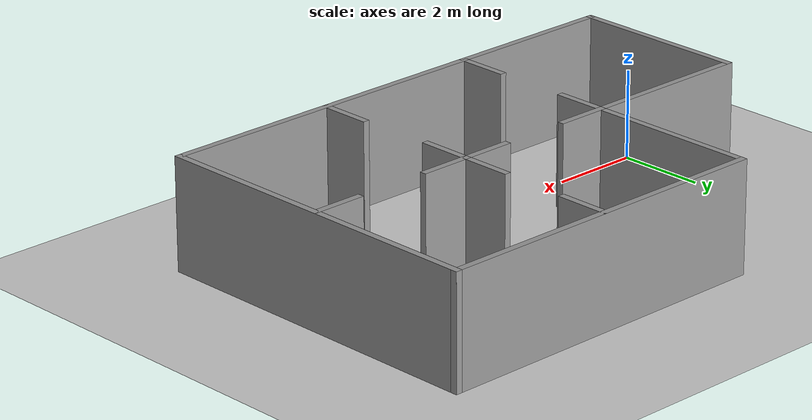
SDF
<sdf version="1.6">
 <world name="default">
  <light name="sun" type="directional">
   <pose>0 0 10 0 -0 0</pose>
   <diffuse>0.8 0.8 0.8 1</diffuse>
   <specular>0.2 0.2 0.2 1</specular>
   <attenuation>
    <range>1000</range>
    <constant>0.9</constant>
    <linear>0.01</linear>
    <quadratic>0.001</quadratic>
   </attenuation>
   <direction>-0.5 0.1 -0.9</direction>
  </light>
  <model name="ground_plane">
   <static>1</static>
   <link name="link">
    <collision name="collision">
     <geometry><plane><normal>0 0 1</normal><size>100 100</size></plane></geometry>
     <surface>
      <contact><collide_bitmask>65535</collide_bitmask></contact>
      <friction><ode><mu>100</mu><mu2>50</mu2></ode></friction>
     </surface>
    </collision>
    <visual name="visual">
     <cast_shadows>0</cast_shadows>
     <geometry><plane><normal>0 0 1</normal><size>100 100</size></plane></geometry>
     <material>
      <script><uri>file://media/materials/scripts/gazebo.material</uri><name>Gazebo/Grey</name></script>
     </material>
    </visual>
   </link>
  </model>
  <gravity>0 0 -9.8</gravity>
  <magnetic_field>6e-06 2.3e-05 -4.2e-05</magnetic_field>
  <atmosphere type="adiabatic"/>
  <physics name="default_physics" default="0" type="ode">
   <max_step_size>0.001</max_step_size>
   <real_time_factor>1</real_time_factor>
   <real_time_update_rate>700</real_time_update_rate>
  </physics>
  <scene><ambient>0.4 0.4 0.4 1</ambient><background>0.7 0.7 0.7 1</background><shadows>1</shadows></scene>
  <audio><device>default</device></audio>
  <spherical_coordinates>
   <surface_model>EARTH_WGS84</surface_model>
   <latitude_deg>0</latitude_deg>
   <longitude_deg>0</longitude_deg>
   <elevation>0</elevation>
   <heading_deg>0</heading_deg>
  </spherical_coordinates>
  <model name="close_loop_home">
   <pose>4.96912 1.9492 0 0 -0 0</pose>
   <link name="Wall_0">
    <collision name="Wall_0_Collision">
     <geometry><box><size>4 0.15 2.5</size></box></geometry>
     <pose>0 0 1.25 0 -0 0</pose>
    </collision>
    <visual name="Wall_0_Visual">
     <pose>0 0 1.25 0 -0 0</pose>
     <geometry><box><size>4 0.15 2.5</size></box></geometry>
     <material>
      <script><uri>file://media/materials/scripts/gazebo.material</uri><name>Gazebo/Grey</name></script>
      <ambient>1 1 1 1</ambient>
     </material>
     <meta><layer>0</layer></meta>
    </visual>
    <pose>-3.925 -3.925 0 0 -0 0</pose>
   </link>
   <link name="Wall_1">
    <collision name="Wall_1_Collision">
     <geometry><box><size>8 0.15 2.5</size></box></geometry>
     <pose>0 0 1.25 0 -0 0</pose>
    </collision>
    <visual name="Wall_1_Visual">
     <pose>0 0 1.25 0 -0 0</pose>
     <geometry><box><size>8 0.15 2.5</size></box></geometry>
     <material>
      <script><uri>file://media/materials/scripts/gazebo.material</uri><name>Gazebo/Grey</name></script>
      <ambient>1 1 1 1</ambient>
     </material>
     <meta><layer>0</layer></meta>
    </visual>
    <pose>1.925 -3.925 0 0 -0 0</pose>
   </link>
   <link name="Wall_10">
    <collision name="Wall_10_Collision">
     <geometry><box><size>1.25 0.15 2.5</size></box></geometry>
     <pose>0 0 1.25 0 -0 0</pose>
    </collision>
    <visual name="Wall_10_Visual">
     <pose>0 0 1.25 0 -0 0</pose>
     <geometry><box><size>1.25 0.15 2.5</size></box></geometry>
     <material>
      <script><uri>file://media/materials/scripts/gazebo.material</uri><name>Gazebo/Grey</name></script>
      <ambient>1 1 1 1</ambient>
     </material>
     <meta><layer>0</layer></meta>
    </visual>
    <pose>-2 -0.475 0 0 -0 -1.5708</pose>
   </link>
   <link name="Wall_12">
    <collision name="Wall_12_Collision">
     <geometry><box><size>1.25 0.15 2.5</size></box></geometry>
     <pose>0 0 1.25 0 -0 0</pose>
    </collision>
    <visual name="Wall_12_Visual">
     <pose>0 0 1.25 0 -0 0</pose>
     <geometry><box><size>1.25 0.15 2.5</size></box></geometry>
     <material>
      <script><uri>file://media/materials/scripts/gazebo.material</uri><name>Gazebo/Grey</name></script>
      <ambient>1 1 1 1</ambient>
     </material>
     <meta><layer>0</layer></meta>
    </visual>
    <pose>-2 -3.375 0 0 -0 1.5708</pose>
   </link>
   <link name="Wall_14">
    <collision name="Wall_14_Collision">
     <geometry><box><size>1.25 0.15 2.5</size></box></geometry>
     <pose>0 0 1.25 0 -0 0</pose>
    </collision>
    <visual name="Wall_14_Visual">
     <pose>0 0 1.25 0 -0 0</pose>
     <geometry><box><size>1.25 0.15 2.5</size></box></geometry>
     <material>
      <script><uri>file://media/materials/scripts/gazebo.material</uri><name>Gazebo/Grey</name></script>
      <ambient>1 1 1 1</ambient>
     </material>
     <meta><layer>0</layer></meta>
    </visual>
    <pose>1.89808 3.37428 0 0 -0 -1.5708</pose>
   </link>
   <link name="Wall_18">
    <collision name="Wall_18_Collision">
     <geometry><box><size>1.25 0.15 2.5</size></box></geometry>
     <pose>0 0 1.25 0 -0 0</pose>
    </collision>
    <visual name="Wall_18_Visual">
     <pose>0 0 1.25 0 -0 0</pose>
     <geometry><box><size>1.25 0.15 2.5</size></box></geometry>
     <material>
      <script><uri>file://media/materials/scripts/gazebo.material</uri><name>Gazebo/Grey</name></script>
      <ambient>1 1 1 1</ambient>
     </material>
     <meta><layer>0</layer></meta>
    </visual>
    <pose>1.85 0.625 0 0 -0 1.5708</pose>
   </link>
   <link name="Wall_20">
    <collision name="Wall_20_Collision">
     <geometry><box><size>1.25 0.15 2.5</size></box></geometry>
     <pose>0 0 1.25 0 -0 0</pose>
    </collision>
    <visual name="Wall_20_Visual">
     <pose>0 0 1.25 0 -0 0</pose>
     <geometry><box><size>1.25 0.15 2.5</size></box></geometry>
     <material>
      <script><uri>file://media/materials/scripts/gazebo.material</uri><name>Gazebo/Grey</name></script>
      <ambient>1 1 1 1</ambient>
     </material>
     <meta><layer>0</layer></meta>
    </visual>
    <pose>2.4 0.075 0 0 -0 0</pose>
   </link>
   <link name="Wall_22">
    <collision name="Wall_22_Collision">
     <geometry><box><size>1.25 0.15 2.5</size></box></geometry>
     <pose>0 0 1.25 0 -0 0</pose>
    </collision>
    <visual name="Wall_22_Visual">
     <pose>0 0 1.25 0 -0 0</pose>
     <geometry><box><size>1.25 0.15 2.5</size></box></geometry>
     <material>
      <script><uri>file://media/materials/scripts/gazebo.material</uri><name>Gazebo/Grey</name></script>
      <ambient>1 1 1 1</ambient>
     </material>
     <meta><layer>0</layer></meta>
    </visual>
    <pose>5.29034 0.062471 0 0 -0 3.14159</pose>
   </link>
   <link name="Wall_26">
    <collision name="Wall_26_Collision">
     <geometry><box><size>1.25 0.15 2.5</size></box></geometry>
     <pose>0 0 1.25 0 -0 0</pose>
    </collision>
    <visual name="Wall_26_Visual">
     <pose>0 0 1.25 0 -0 0</pose>
     <geometry><box><size>1.25 0.15 2.5</size></box></geometry>
     <material>
      <script><uri>file://media/materials/scripts/gazebo.material</uri><name>Gazebo/Grey</name></script>
      <ambient>1 1 1 1</ambient>
     </material>
     <meta><layer>0</layer></meta>
    </visual>
    <pose>1.3 0.075 0 0 -0 3.14159</pose>
   </link>
   <link name="Wall_28">
    <collision name="Wall_28_Collision">
     <geometry><box><size>1.25 0.15 2.5</size></box></geometry>
     <pose>0 0 1.25 0 -0 0</pose>
    </collision>
    <visual name="Wall_28_Visual">
     <pose>0 0 1.25 0 -0 0</pose>
     <geometry><box><size>1.25 0.15 2.5</size></box></geometry>
     <material>
      <script><uri>file://media/materials/scripts/gazebo.material</uri><name>Gazebo/Grey</name></script>
      <ambient>1 1 1 1</ambient>
     </material>
     <meta><layer>0</layer></meta>
    </visual>
    <pose>1.85 -0.475 0 0 -0 -1.5708</pose>
   </link>
   <link name="Wall_3">
    <collision name="Wall_3_Collision">
     <geometry><box><size>8 0.15 2.5</size></box></geometry>
     <pose>0 0 1.25 0 -0 0</pose>
    </collision>
    <visual name="Wall_3_Visual">
     <pose>0 0 1.25 0 -0 0</pose>
     <geometry><box><size>8 0.15 2.5</size></box></geometry>
     <material>
      <script><uri>file://media/materials/scripts/gazebo.material</uri><name>Gazebo/Grey</name></script>
      <ambient>1 1 1 1</ambient>
     </material>
     <meta><layer>0</layer></meta>
    </visual>
    <pose>5.85 0 0 0 -0 1.5708</pose>
   </link>
   <link name="Wall_30">
    <collision name="Wall_30_Collision">
     <geometry><box><size>1.25 0.15 2.5</size></box></geometry>
     <pose>0 0 1.25 0 -0 0</pose>
    </collision>
    <visual name="Wall_30_Visual">
     <pose>0 0 1.25 0 -0 0</pose>
     <geometry><box><size>1.25 0.15 2.5</size></box></geometry>
     <material>
      <script><uri>file://media/materials/scripts/gazebo.material</uri><name>Gazebo/Grey</name></script>
      <ambient>1 1 1 1</ambient>
     </material>
     <meta><layer>0</layer></meta>
    </visual>
    <pose>1.91819 -3.37002 0 0 -0 1.5708</pose>
   </link>
   <link name="Wall_32">
    <collision name="Wall_32_Collision">
     <geometry><box><size>1.25 0.15 2.5</size></box></geometry>
     <pose>0 0 1.25 0 -0 0</pose>
    </collision>
    <visual name="Wall_32_Visual">
     <pose>0 0 1.25 0 -0 0</pose>
     <geometry><box><size>1.25 0.15 2.5</size></box></geometry>
     <material>
      <script><uri>file://media/materials/scripts/gazebo.material</uri><name>Gazebo/Grey</name></script>
      <ambient>1 1 1 1</ambient>
     </material>
     <meta><layer>0</layer></meta>
    </visual>
    <pose>-1.45 0.075 0 0 -0 0</pose>
   </link>
   <link name="Wall_4">
    <collision name="Wall_4_Collision">
     <geometry><box><size>8 0.15 2.5</size></box></geometry>
     <pose>0 0 1.25 0 -0 0</pose>
    </collision>
    <visual name="Wall_4_Visual">
     <pose>0 0 1.25 0 -0 0</pose>
     <geometry><box><size>8 0.15 2.5</size></box></geometry>
     <material>
      <script><uri>file://media/materials/scripts/gazebo.material</uri><name>Gazebo/Grey</name></script>
      <ambient>1 1 1 1</ambient>
     </material>
     <meta><layer>0</layer></meta>
    </visual>
    <pose>1.925 3.925 0 0 -0 3.14159</pose>
   </link>
   <link name="Wall_6">
    <collision name="Wall_6_Collision">
     <geometry><box><size>4 0.15 2.5</size></box></geometry>
     <pose>0 0 1.25 0 -0 0</pose>
    </collision>
    <visual name="Wall_6_Visual">
     <pose>0 0 1.25 0 -0 0</pose>
     <geometry><box><size>4 0.15 2.5</size></box></geometry>
     <material>
      <script><uri>file://media/materials/scripts/gazebo.material</uri><name>Gazebo/Grey</name></script>
      <ambient>1 1 1 1</ambient>
     </material>
     <meta><layer>0</layer></meta>
    </visual>
    <pose>-2 2 0 0 -0 -1.5708</pose>
   </link>
   <link name="Wall_7">
    <collision name="Wall_7_Collision">
     <geometry><box><size>4 0.15 2.5</size></box></geometry>
     <pose>0 0 1.25 0 -0 0</pose>
    </collision>
    <visual name="Wall_7_Visual">
     <pose>0 0 1.25 0 -0 0</pose>
     <geometry><box><size>4 0.15 2.5</size></box></geometry>
     <material>
      <script><uri>file://media/materials/scripts/gazebo.material</uri><name>Gazebo/Grey</name></script>
      <ambient>1 1 1 1</ambient>
     </material>
     <meta><layer>0</layer></meta>
    </visual>
    <pose>-3.925 0.075 0 0 -0 3.14159</pose>
   </link>
   <link name="Wall_8">
    <collision name="Wall_8_Collision">
     <geometry><box><size>4.15 0.15 2.5</size></box></geometry>
     <pose>0 0 1.25 0 -0 0</pose>
    </collision>
    <visual name="Wall_8_Visual">
     <pose>0 0 1.25 0 -0 0</pose>
     <geometry><box><size>4.15 0.15 2.5</size></box></geometry>
     <material>
      <script><uri>file://media/materials/scripts/gazebo.material</uri><name>Gazebo/Grey</name></script>
      <ambient>1 1 1 1</ambient>
     </material>
     <meta><layer>0</layer></meta>
    </visual>
    <pose>-5.85 -1.925 0 0 -0 -1.5708</pose>
   </link>
   <static>1</static>
  </model>
 </world>
</sdf>
